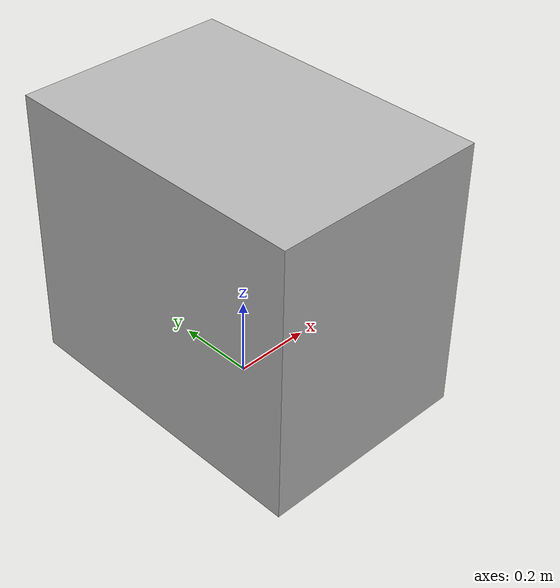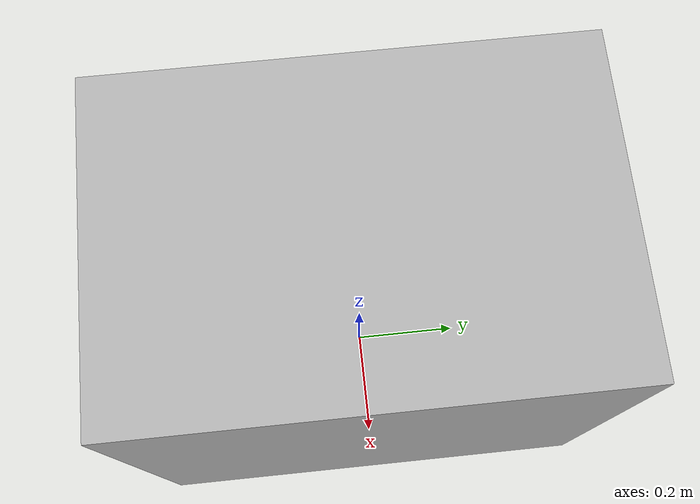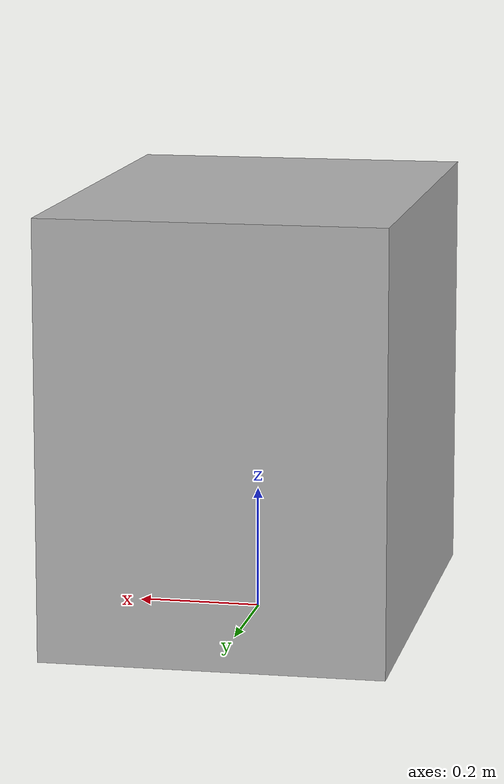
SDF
<?xml version="1.0" encoding="UTF-8" ?>
<sdf version="1.6">
    <model name="robotics_testlabs_sdf/battery_table">
        <static>1</static>
        <link name="link">
            <collision name="main object">
                <pose>0 0 0.35 0 0 0</pose>
                <geometry>
                    <box>
                        <size>0.55 0.8 0.7</size>
                    </box>
                </geometry>
            </collision>
            <visual name="main object">
                <pose>0 0 0.35 0 0 0</pose>
                <geometry>
                    <box>
                        <size>0.55 0.8 0.7</size>
                    </box>
                </geometry>
            </visual>
        </link>
        <color>
            <red>0.4</red>
            <green>0.3</green>
            <blue>0.2</blue>
        </color>
    </model>
</sdf>
